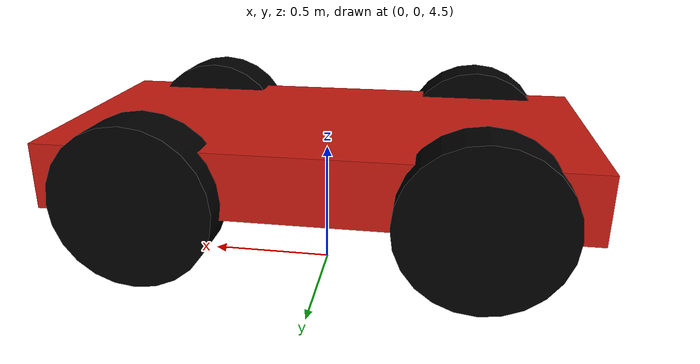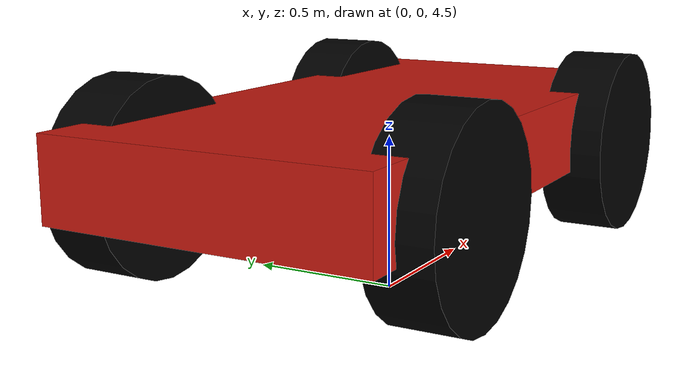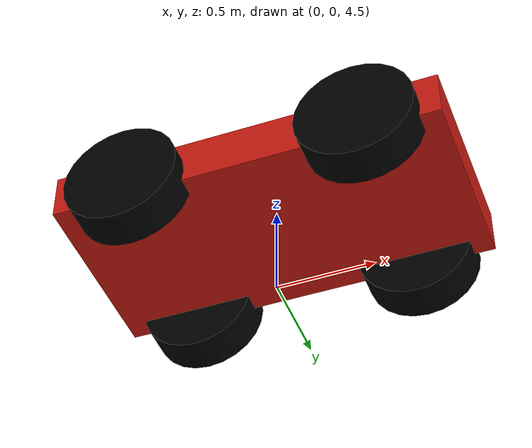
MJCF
<mujoco>
	<asset>
		<material name="wheel_material" rgba="0 0 0 1" reflectance="0" shininess="0" emission="0" specular="0.1" />
	</asset>
	<asset>
		<material name="car1_chassis_material" rgba="0.8 0.102 0.063 1" reflectance="0" shininess="1" emission="0.0" specular="0.0" />
	</asset>
	<asset>
		<texture name="sky_texture" type="skybox" file="D:/kody/rl_project/src/xmls/assets/Wispy_Sky-Night_03-512x512.png" />
		<texture name="wall_texture" type="2d" file="D:/kody/rl_project/src/xmls/assets/Fuzzy_Sky-Night_01-512x512.png" />
		<material name="wall_material" rgba="0 0 0 0" />
		<texture name="ground_texture" type="2d" file="D:/kody/rl_project/src/xmls/assets/ground.png" />
		<material name="ground_material" texture="ground_texture" texrepeat="25 25" />
	</asset>
	<worldbody>
		<geom name="ground_bottom" type="plane" size="25.0 25.0 10.0" material="ground_material" friction="1.0 0.005 0.0001" />
		<geom name="ground_left" type="box" size="10.0 25.0 5.0" pos="-35.0 0 5.0" material="wall_material" />
		<geom name="ground_right" type="box" size="10.0 25.0 5.0" pos="35.0 0 5.0" material="wall_material" />
		<geom name="ground_front" type="box" size="25.0 10.0 5.0" pos="0 35.0 5.0" material="wall_material" />
		<geom name="ground_back" type="box" size="25.0 10.0 5.0" pos="0 -35.0 5.0" material="wall_material" />
		<light dir="0 0 -1" pos="0 0 1000" diffuse="1 1 1" castshadow="true" />
		<light dir="0.7001400420140049 -0.7001400420140049 -0.140028008402801" pos="-25.0 25.0 10.0" diffuse="0.3 0.3 0.3" castshadow="false" />
		<light dir="-0.7001400420140049 -0.7001400420140049 -0.140028008402801" pos="25.0 25.0 10.0" diffuse="0.3 0.3 0.3" castshadow="false" />
		<light dir="0.7001400420140049 0.7001400420140049 -0.140028008402801" pos="-25.0 -25.0 10.0" diffuse="0.3 0.3 0.3" castshadow="false" />
		<light dir="-0.7001400420140049 0.7001400420140049 -0.140028008402801" pos="25.0 -25.0 10.0" diffuse="0.3 0.3 0.3" castshadow="false" />
		<camera name="TopDownCam" pos="0 0 24.999999999999996" euler="0 0 -90" fovy="90" />
		<body name="car1" pos="0 0 5">
			<freejoint />
			<body name="car1_front_lights" pos="1.0 0 0" />
			<body name="car1_chassis">
				<geom name="car1_chassis_geom" material="car1_chassis_material" type="box" size="1.0 0.5 0.125" mass="1500" />
				<body name="car1_wheel1" pos="0.6 -0.5 -0.0625" zaxis="0 1 0">
					<joint name="car1_wheel1_joint_steer" type="hinge" axis="0 1 0" limited="true" range="-45 45" />
					<joint name="car1_wheel1_joint_roll" />
					<geom type="cylinder" size="0.3 0.1" material="wheel_material" mass="30" friction="1 0.001 0.001" />
				</body>
				<body name="car1_wheel2" pos="0.6 0.5 -0.0625" zaxis="0 1 0">
					<joint name="car1_wheel2_joint_steer" type="hinge" axis="0 1 0" limited="true" range="-45 45" />
					<joint name="car1_wheel2_joint_roll" />
					<geom type="cylinder" size="0.3 0.1" material="wheel_material" mass="30" friction="1 0.001 0.001" />
				</body>
				<body name="car1_wheel3" pos="-0.6 -0.5 -0.0625" zaxis="0 1 0">
					<joint name="car1_wheel3_joint_roll" />
					<geom type="cylinder" size="0.3 0.1" material="wheel_material" mass="30" friction="1 0.001 0.001" />
				</body>
				<body name="car1_wheel4" pos="-0.6 0.5 -0.0625" zaxis="0 1 0">
					<joint name="car1_wheel4_joint_roll" />
					<geom type="cylinder" size="0.3 0.1" material="wheel_material" mass="30" friction="1 0.001 0.001" />
				</body>
			</body>
		</body>
	</worldbody>
	<tendon>
		<fixed name="car1_back_wheels_tendon">
			<joint joint="car1_wheel3_joint_roll" coef="1000" />
			<joint joint="car1_wheel4_joint_roll" coef="1000" />
		</fixed>
	</tendon>
	<actuator>
		<motor name="car1_engine_power" tendon="car1_back_wheels_tendon" ctrlrange="-1 1" />
		<position name="car1_wheel1_angle" joint="car1_wheel1_joint_steer" kp="1000" ctrlrange="-0.7853981633974483 0.7853981633974483" />
		<position name="car1_wheel2_angle" joint="car1_wheel2_joint_steer" kp="1000" ctrlrange="-0.7853981633974483 0.7853981633974483" />
	</actuator>
</mujoco>
